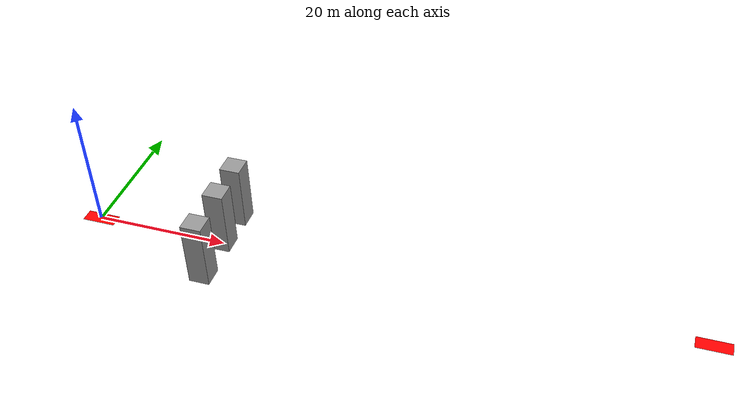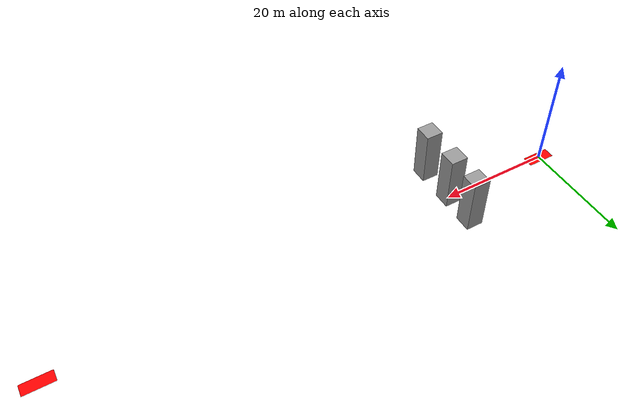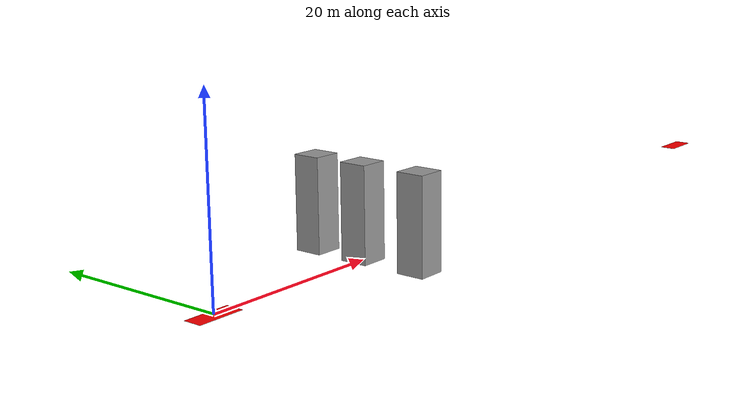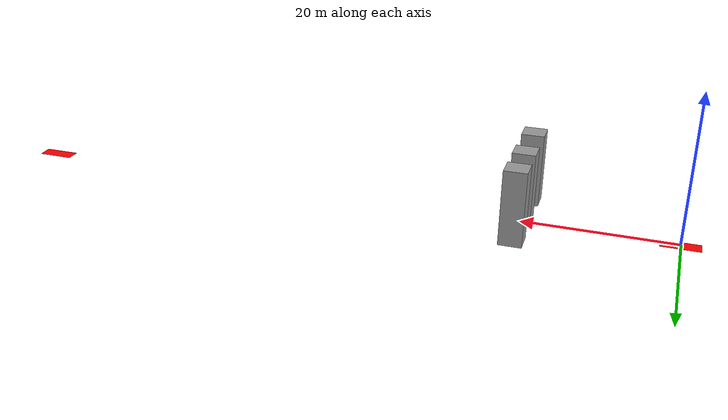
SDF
<sdf version="1.5">
 <world name="default">
  <light name="sun" type="directional">
   <pose>0 0 30 0 -0 0</pose>
   <diffuse>0.8 0.8 0.8 1</diffuse>
   <specular>0.2 0.2 0.2 1</specular>
   <attenuation>
    <range>1000</range>
    <constant>0.9</constant>
    <linear>0.01</linear>
    <quadratic>0.001</quadratic>
   </attenuation>
   <direction>-0.5 0.1 -0.9</direction>
  </light>
  <model name="initial_position">
   <link name="marker">
    <pose>0 0 0.01 0 0 0</pose>
    <visual name="small_indoor_scenario">
     <geometry><plane><normal>0 0 1</normal><size>5 2</size></plane></geometry>
     <material>
      <ambient>1 0 0 1</ambient>
      <diffuse>1 0 0 1</diffuse>
      <specular>0.1 0.1 0.1 1</specular>
      <emissive>0 0 0 0</emissive>
     </material>
     <cast_shadows>false</cast_shadows>
    </visual>
   </link>
   <static>true</static>
  </model>
  <model name="final_position">
   <link name="marker">
    <pose>90 0 0.01 0 0 0</pose>
    <visual name="small_indoor_scenario">
     <geometry><plane><normal>0 0 1</normal><size>5 2</size></plane></geometry>
     <material>
      <ambient>1 0 0 1</ambient>
      <diffuse>1 0 0 1</diffuse>
      <specular>0.1 0.1 0.1 1</specular>
      <emissive>0 0 0 0</emissive>
     </material>
     <cast_shadows>false</cast_shadows>
    </visual>
   </link>
   <static>true</static>
  </model>
  <model name="box">
   <static>true</static>
   <pose>20 0 5 0 0 0</pose>
   <link name="link">
    <inertial>
     <mass>1000</mass>
     <inertia><ixx>0.145833</ixx><ixy>0</ixy><ixz>0</ixz><iyy>0.145833</iyy><iyz>0</iyz><izz>0.125</izz></inertia>
    </inertial>
    <collision name="collision"><geometry><box><size>3 3 10</size></box></geometry></collision>
    <visual name="visual">
     <geometry><box><size>3 3 10</size></box></geometry>
     <material>
      <script><name>Gazebo/Grey</name><uri>file://media/materials/scripts/gazebo.material</uri></script>
     </material>
    </visual>
   </link>
  </model>
  <model name="box">
   <static>true</static>
   <pose>20 6 5 0 0 0</pose>
   <link name="link">
    <inertial>
     <mass>1000</mass>
     <inertia><ixx>0.145833</ixx><ixy>0</ixy><ixz>0</ixz><iyy>0.145833</iyy><iyz>0</iyz><izz>0.125</izz></inertia>
    </inertial>
    <collision name="collision"><geometry><box><size>3 3 10</size></box></geometry></collision>
    <visual name="visual">
     <geometry><box><size>3 3 10</size></box></geometry>
     <material>
      <script><name>Gazebo/Grey</name><uri>file://media/materials/scripts/gazebo.material</uri></script>
     </material>
    </visual>
   </link>
  </model>
  <model name="box">
   <static>true</static>
   <pose>20 -7 5 0 0 0</pose>
   <link name="link">
    <inertial>
     <mass>1000</mass>
     <inertia><ixx>0.145833</ixx><ixy>0</ixy><ixz>0</ixz><iyy>0.145833</iyy><iyz>0</iyz><izz>0.125</izz></inertia>
    </inertial>
    <collision name="collision"><geometry><box><size>3 3 10</size></box></geometry></collision>
    <visual name="visual">
     <geometry><box><size>3 3 10</size></box></geometry>
     <material>
      <script><name>Gazebo/Grey</name><uri>file://media/materials/scripts/gazebo.material</uri></script>
     </material>
    </visual>
   </link>
  </model>
  <physics name="default_physics" default="0" type="ode">
   <ode><solver><type>quick</type><iters>400</iters></solver></ode>
   <max_step_size>0.001</max_step_size>
   <real_time_factor>1</real_time_factor>
   <real_time_update_rate>1000</real_time_update_rate>
  </physics>
 </world>
</sdf>
